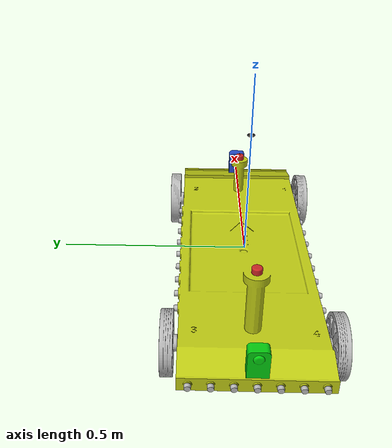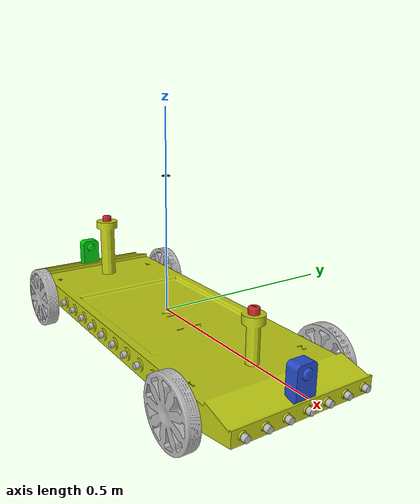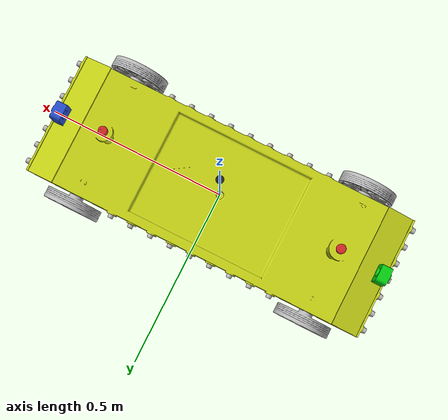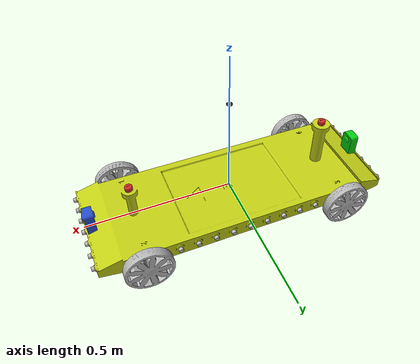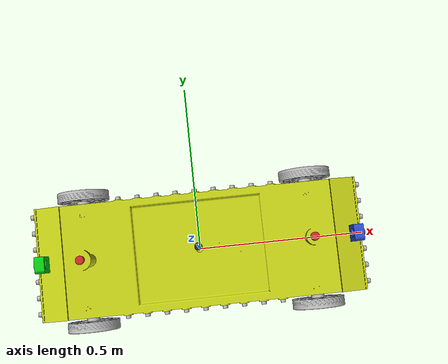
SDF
<sdf version='1.7'>
  <model name='rover_proto_A1_gps'>
    <link name='Chassis'>
      <inertial>
        <pose>-0.003619 -4e-06 -0.025334 0 -0 0</pose>
        <mass>18.0919</mass>
        <inertia>
          <ixx>0.190571</ixx>
          <ixy>-3.70553e-06</ixy>
          <ixz>0.00402853</ixz>
          <iyy>1.55584</iyy>
          <iyz>-8.33152e-06</iyz>
          <izz>1.731</izz>
        </inertia>
      </inertial>
      <collision name='Chassis_collision'>
        <pose>0 0 0 0 -0 0</pose>
        <geometry>
          <mesh>
            <scale>1 1 1</scale>
            <uri>model://line_following_rover/urdf/rover_proto_A1/meshes/Chassis.STL</uri>
          </mesh>
        </geometry>
      </collision>
      <collision name='Chassis_fixed_joint_lump__Camera_Back_Link_collision_1'>
        <pose>-0.50128 0 0.046965 0 -0 0</pose>
        <geometry>
          <mesh>
            <scale>1 1 1</scale>
            <uri>model://line_following_rover/urdf/rover_proto_A1/meshes/Camera_Back_Link.STL</uri>
          </mesh>
        </geometry>
      </collision>
      <collision name='Chassis_fixed_joint_lump__Camera_Fwd_Link_collision_2'>
        <pose>0.49872 0 0.046965 0 -0 0</pose>
        <geometry>
          <mesh>
            <scale>1 1 1</scale>
            <uri>model://line_following_rover/urdf/rover_proto_A1/meshes/Camera_Fwd_Link.STL</uri>
          </mesh>
        </geometry>
        <surface>
          <contact>
            <ode/>
          </contact>
          <friction>
            <ode/>
          </friction>
        </surface>
      </collision>
      <collision name='Chassis_fixed_joint_lump__Lidar_Back_Link_collision_3'>
        <pose>-0.34128 0 0.166 0 -0 1.57</pose>
        <geometry>
          <mesh>
            <scale>1 1 1</scale>
            <uri>model://line_following_rover/urdf/rover_proto_A1/meshes/Lidar_Back_Link.STL</uri>
          </mesh>
        </geometry>
        <surface>
          <contact>
            <ode/>
          </contact>
          <friction>
            <ode/>
          </friction>
        </surface>
      </collision>
      <collision name='Chassis_fixed_joint_lump__Lidar_Fwd_Link_collision_4'>
        <pose>0.33872 0 0.116 0 0 -1.57</pose>
        <geometry>
          <mesh>
            <scale>1 1 1</scale>
            <uri>model://line_following_rover/urdf/rover_proto_A1/meshes/Lidar_Fwd_Link.STL</uri>
          </mesh>
        </geometry>
        <surface>
          <contact>
            <ode/>
          </contact>
          <friction>
            <ode/>
          </friction>
        </surface>
      </collision>
      <collision name='Chassis_fixed_joint_lump__Lights_Back_Link_collision_5'>
        <pose>0 0 0 0 -0 0</pose>
        <geometry>
          <mesh>
            <scale>1 1 1</scale>
            <uri>model://line_following_rover/urdf/rover_proto_A1/meshes/Lights_Back_Link.STL</uri>
          </mesh>
        </geometry>
      </collision>
      <collision name='Chassis_fixed_joint_lump__Lights_Fwd_Link_collision_6'>
        <pose>0 0 0 0 -0 0</pose>
        <geometry>
          <mesh>
            <scale>1 1 1</scale>
            <uri>model://line_following_rover/urdf/rover_proto_A1/meshes/Lights_Fwd_Link.STL</uri>
          </mesh>
        </geometry>
      </collision>
      <collision name='Chassis_fixed_joint_lump__Lights_Left_Link_collision_7'>
        <pose>0 0 0 0 -0 0</pose>
        <geometry>
          <mesh>
            <scale>1 1 1</scale>
            <uri>model://line_following_rover/urdf/rover_proto_A1/meshes/Lights_Left_Link.STL</uri>
          </mesh>
        </geometry>
      </collision>
      <collision name='Chassis_fixed_joint_lump__Lights_Right_Link_collision_8'>
        <pose>0 0 0 0 -0 0</pose>
        <geometry>
          <mesh>
            <scale>1 1 1</scale>
            <uri>model://line_following_rover/urdf/rover_proto_A1/meshes/Lights_Right_Link.STL</uri>
          </mesh>
        </geometry>
      </collision>
      <visual name='Chassis_visual'>
        <pose>0 0 0 0 -0 0</pose>
        <geometry>
          <mesh>
            <scale>1 1 1</scale>
            <uri>model://line_following_rover/urdf/rover_proto_A1/meshes/Chassis.dae</uri>
          </mesh>
        </geometry>
      </visual>
      <visual name='Chassis_fixed_joint_lump__Camera_Back_Link_visual_1'>
        <pose>-0.50128 0 0.046965 0 -0 0</pose>
        <geometry>
          <mesh>
            <scale>1 1 1</scale>
            <uri>model://line_following_rover/urdf/rover_proto_A1/meshes/Camera_Back_Link.dae</uri>
          </mesh>
        </geometry>
      </visual>
      <visual name='Chassis_fixed_joint_lump__Camera_Fwd_Link_visual_2'>
        <pose>0.49872 0 0.046965 0 -0 0</pose>
        <geometry>
          <mesh>
            <scale>1 1 1</scale>
            <uri>model://line_following_rover/urdf/rover_proto_A1/meshes/Camera_Fwd_Link.STL</uri>
          </mesh>
        </geometry>
        <material>
          <script>
            <name>Gazebo/Blue</name>
            <uri>file://media/materials/scripts/gazebo.material</uri>
          </script>
        </material>
      </visual>
      <visual name='Chassis_fixed_joint_lump__Lidar_Back_Link_visual_3'>
        <pose>-0.34128 0 0.166 0 -0 1.57</pose>
        <geometry>
          <mesh>
            <scale>1 1 1</scale>
            <uri>model://line_following_rover/urdf/rover_proto_A1/meshes/Lidar_Back_Link.STL</uri>
          </mesh>
        </geometry>
        <material>
          <script>
            <name>Gazebo/Red</name>
            <uri>file://media/materials/scripts/gazebo.material</uri>
          </script>
        </material>
      </visual>
      <visual name='Chassis_fixed_joint_lump__Lidar_Fwd_Link_visual_4'>
        <pose>0.33872 0 0.116 0 0 -1.57</pose>
        <geometry>
          <mesh>
            <scale>1 1 1</scale>
            <uri>model://line_following_rover/urdf/rover_proto_A1/meshes/Lidar_Fwd_Link.STL</uri>
          </mesh>
        </geometry>
        <material>
          <script>
            <name>Gazebo/Red</name>
            <uri>file://media/materials/scripts/gazebo.material</uri>
          </script>
        </material>
      </visual>
      <visual name='Chassis_fixed_joint_lump__Lights_Back_Link_visual_5'>
        <pose>0 0 0 0 -0 0</pose>
        <geometry>
          <mesh>
            <scale>1 1 1</scale>
            <uri>model://line_following_rover/urdf/rover_proto_A1/meshes/Lights_Back_Link.STL</uri>
          </mesh>
        </geometry>
      </visual>
      <visual name='Chassis_fixed_joint_lump__Lights_Fwd_Link_visual_6'>
        <pose>0 0 0 0 -0 0</pose>
        <geometry>
          <mesh>
            <scale>1 1 1</scale>
            <uri>model://line_following_rover/urdf/rover_proto_A1/meshes/Lights_Fwd_Link.STL</uri>
          </mesh>
        </geometry>
      </visual>
      <visual name='Chassis_fixed_joint_lump__Lights_Left_Link_visual_7'>
        <pose>0 0 0 0 -0 0</pose>
        <geometry>
          <mesh>
            <scale>1 1 1</scale>
            <uri>model://line_following_rover/urdf/rover_proto_A1/meshes/Lights_Left_Link.STL</uri>
          </mesh>
        </geometry>
      </visual>
      <visual name='Chassis_fixed_joint_lump__Lights_Right_Link_visual_8'>
        <pose>0 0 0 0 -0 0</pose>
        <geometry>
          <mesh>
            <scale>1 1 1</scale>
            <uri>model://line_following_rover/urdf/rover_proto_A1/meshes/Lights_Right_Link.STL</uri>
          </mesh>
        </geometry>
      </visual>
      <sensor name='camera_scan_back' type='camera'>
        <visualize>1</visualize>
        <update_rate>30</update_rate>
        <camera name='cam_back'>
          <horizontal_fov>1.39626</horizontal_fov>
          <image>
            <width>800</width>
            <height>800</height>
            <format>R8G8B8</format>
          </image>
          <clip>
            <near>0.02</near>
            <far>300</far>
          </clip>
          <noise>
            <type>gaussian</type>
            <mean>0</mean>
            <stddev>0.007</stddev>
          </noise>
        </camera>
        <plugin name='camera_driver_bck' filename='libgazebo_ros_camera.so'>
          <updateRate>0.0</updateRate>
          <cameraName>/camera_back</cameraName>
          <imageTopicName>image_raw</imageTopicName>
          <cameraInfoTopicName>camera_info</cameraInfoTopicName>
          <frameName>Camera_Back_Link_Frame</frameName>
          <hackBaseline>0.07</hackBaseline>
        </plugin>
        <pose>-0.50128 0 0.046965 0 -0 -3.14159</pose>
        <alwaysOn>1</alwaysOn>
      </sensor>
      <sensor name='camera_scan_fwd' type='camera'>
        <visualize>1</visualize>
        <update_rate>30</update_rate>
        <camera name='cam_fwd'>
          <horizontal_fov>1.39626</horizontal_fov>
          <image>
            <width>800</width>
            <height>800</height>
            <format>R8G8B8</format>
          </image>
          <clip>
            <near>0.02</near>
            <far>300</far>
          </clip>
          <noise>
            <type>gaussian</type>
            <mean>0</mean>
            <stddev>0.007</stddev>
          </noise>
        </camera>
        <plugin name='camera_driver_fwd' filename='libgazebo_ros_camera.so'>
          <updateRate>0.0</updateRate>
          <cameraName>/camera_fwd</cameraName>
          <imageTopicName>image_raw</imageTopicName>
          <cameraInfoTopicName>camera_info</cameraInfoTopicName>
          <frameName>Camera_Fwd_Link</frameName>
          <hackBaseline>0.07</hackBaseline>
        </plugin>
        <pose>0.49872 0 0.046965 0 -0 0</pose>
        <alwaysOn>1</alwaysOn>
      </sensor>
      <sensor name='gazebo_lidar_back' type='ray'>
        <visualize>1</visualize>
        <update_rate>12</update_rate>
        <plugin name='gazebo_lidar_back' filename='libgazebo_ros_ray_sensor.so'>
          <ros>
            <remapping>~/out:=lidar_scan_back</remapping>
          </ros>
          <output_type>sensor_msgs/LaserScan</output_type>
          <frame_name>Lidar_Back_Link</frame_name>
        </plugin>
        <ray>
          <scan>
            <horizontal>
              <samples>360</samples>
              <resolution>1</resolution>
              <min_angle>0</min_angle>
              <max_angle>3.14</max_angle>
            </horizontal>
          </scan>
          <range>
            <min>0.12</min>
            <max>3.5</max>
            <resolution>0.015</resolution>
          </range>
          <noise>
            <type>gaussian</type>
            <mean>0</mean>
            <stddev>0.01</stddev>
          </noise>
        </ray>
        <pose>-0.34128 0 0.166 0 -0 1.57</pose>
      </sensor>
      <sensor name='gazebo_lidar_fwd' type='ray'>
        <visualize>1</visualize>
        <update_rate>12</update_rate>
        <plugin name='gazebo_lidar_fwd' filename='libgazebo_ros_ray_sensor.so'>
          <ros>
            <remapping>~/out:=lidar_scan_fwd</remapping>
          </ros>
          <output_type>sensor_msgs/LaserScan</output_type>
          <frame_name>Lidar_Fwd_Link</frame_name>
        </plugin>
        <ray>
          <scan>
            <horizontal>
              <samples>360</samples>
              <resolution>1</resolution>
              <min_angle>0</min_angle>
              <max_angle>3.14</max_angle>
            </horizontal>
          </scan>
          <range>
            <min>0.12</min>
            <max>3.5</max>
            <resolution>0.015</resolution>
          </range>
          <noise>
            <type>gaussian</type>
            <mean>0</mean>
            <stddev>0.01</stddev>
          </noise>
        </ray>
        <pose>0.33872 0 0.116 0 0 -1.57</pose>
      </sensor>
    </link>
    <joint name='Wheel_1_Joint' type='revolute'>
      <pose relative_to='Chassis'>0.34872 -0.215 -0.04 1.5708 -0 0</pose>
      <parent>Chassis</parent>
      <child>Wheel_1_Link</child>
      <axis>
        <xyz>0 0 -1</xyz>
        <limit>
          <effort>10</effort>
          <velocity>12</velocity>
          <lower>-1e+16</lower>
          <upper>1e+16</upper>
        </limit>
        <dynamics>
          <damping>0.25</damping>
          <friction>0.5</friction>
          <spring_reference>0</spring_reference>
          <spring_stiffness>0</spring_stiffness>
        </dynamics>
      </axis>
    </joint>
    <link name='Wheel_1_Link'>
      <pose relative_to='Wheel_1_Joint'>0 0 0 0 -0 0</pose>
      <inertial>
        <pose>0 -0 -0.016853 0 -0 0</pose>
        <mass>0.456818</mass>
        <inertia>
          <ixx>0.000768197</ixx>
          <ixy>4.1359e-21</ixy>
          <ixz>-4.91914e-19</ixz>
          <iyy>0.000768197</iyy>
          <iyz>2.33003e-19</iyz>
          <izz>0.00134492</izz>
        </inertia>
      </inertial>
      <collision name='Wheel_1_Link_collision'>
        <pose>0 0 0 0 -0 0</pose>
        <geometry>
          <mesh>
            <scale>1 1 1</scale>
            <uri>model://line_following_rover/urdf/rover_proto_A1/meshes/Wheel_1_Link.STL</uri>
          </mesh>
        </geometry>
      </collision>
      <visual name='Wheel_1_Link_visual'>
        <pose>0 0 0 0 -0 0</pose>
        <geometry>
          <mesh>
            <scale>1 1 1</scale>
            <uri>model://line_following_rover/urdf/rover_proto_A1/meshes/Wheel_1_Link.STL</uri>
          </mesh>
        </geometry>
      </visual>
    </link>
    <joint name='Wheel_2_Joint' type='revolute'>
      <pose relative_to='Chassis'>0.34872 0.215 -0.04 1.5708 -0 0</pose>
      <parent>Chassis</parent>
      <child>Wheel_2_Link</child>
      <axis>
        <xyz>0 0 -1</xyz>
        <limit>
          <effort>10</effort>
          <velocity>12</velocity>
          <lower>-1e+16</lower>
          <upper>1e+16</upper>
        </limit>
        <dynamics>
          <damping>0.25</damping>
          <friction>0.5</friction>
          <spring_reference>0</spring_reference>
          <spring_stiffness>0</spring_stiffness>
        </dynamics>
      </axis>
    </joint>
    <link name='Wheel_2_Link'>
      <pose relative_to='Wheel_2_Joint'>0 0 0 0 -0 0</pose>
      <inertial>
        <pose>-0 0 0.016853 0 -0 0</pose>
        <mass>0.456818</mass>
        <inertia>
          <ixx>0.000768197</ixx>
          <ixy>1.02115e-18</ixy>
          <ixz>-7.60711e-19</ixz>
          <iyy>0.000768197</iyy>
          <iyz>3.64043e-19</iyz>
          <izz>0.00134492</izz>
        </inertia>
      </inertial>
      <collision name='Wheel_2_Link_collision'>
        <pose>0 0 0 0 -0 0</pose>
        <geometry>
          <mesh>
            <scale>1 1 1</scale>
            <uri>model://line_following_rover/urdf/rover_proto_A1/meshes/Wheel_2_Link.STL</uri>
          </mesh>
        </geometry>
      </collision>
      <visual name='Wheel_2_Link_visual'>
        <pose>0 0 0 0 -0 0</pose>
        <geometry>
          <mesh>
            <scale>1 1 1</scale>
            <uri>model://line_following_rover/urdf/rover_proto_A1/meshes/Wheel_2_Link.STL</uri>
          </mesh>
        </geometry>
      </visual>
    </link>
    <joint name='Wheel_3_Joint' type='revolute'>
      <pose relative_to='Chassis'>-0.35128 0.21499 -0.04 1.5708 -0 0</pose>
      <parent>Chassis</parent>
      <child>Wheel_3_Link</child>
      <axis>
        <xyz>0 0 -1</xyz>
        <limit>
          <effort>10</effort>
          <velocity>12</velocity>
          <lower>-1e+16</lower>
          <upper>1e+16</upper>
        </limit>
        <dynamics>
          <damping>0.25</damping>
          <friction>0.5</friction>
          <spring_reference>0</spring_reference>
          <spring_stiffness>0</spring_stiffness>
        </dynamics>
      </axis>
    </joint>
    <link name='Wheel_3_Link'>
      <pose relative_to='Wheel_3_Joint'>0 0 0 0 -0 0</pose>
      <inertial>
        <pose>-0 -0 0.016853 0 -0 0</pose>
        <mass>0.456818</mass>
        <inertia>
          <ixx>0.000768197</ixx>
          <ixy>-1.88597e-19</ixy>
          <ixz>-4.93382e-19</ixz>
          <iyy>0.000768197</iyy>
          <iyz>-2.11063e-19</iyz>
          <izz>0.00134492</izz>
        </inertia>
      </inertial>
      <collision name='Wheel_3_Link_collision'>
        <pose>0 0 0 0 -0 0</pose>
        <geometry>
          <mesh>
            <scale>1 1 1</scale>
            <uri>model://line_following_rover/urdf/rover_proto_A1/meshes/Wheel_3_Link.STL</uri>
          </mesh>
        </geometry>
      </collision>
      <visual name='Wheel_3_Link_visual'>
        <pose>0 0 0 0 -0 0</pose>
        <geometry>
          <mesh>
            <scale>1 1 1</scale>
            <uri>model://line_following_rover/urdf/rover_proto_A1/meshes/Wheel_3_Link.STL</uri>
          </mesh>
        </geometry>
      </visual>
    </link>
    <joint name='Wheel_4_Joint' type='revolute'>
      <pose relative_to='Chassis'>-0.35128 -0.215 -0.04 1.5708 -0 0</pose>
      <parent>Chassis</parent>
      <child>Wheel_4_Link</child>
      <axis>
        <xyz>0 0 -1</xyz>
        <limit>
          <effort>10</effort>
          <velocity>12</velocity>
          <lower>-1e+16</lower>
          <upper>1e+16</upper>
        </limit>
        <dynamics>
          <damping>0.25</damping>
          <friction>0.5</friction>
          <spring_reference>0</spring_reference>
          <spring_stiffness>0</spring_stiffness>
        </dynamics>
      </axis>
    </joint>
    <link name='Wheel_4_Link'>
      <pose relative_to='Wheel_4_Joint'>0 0 0 0 -0 0</pose>
      <inertial>
        <pose>0 0 -0.016853 0 -0 0</pose>
        <mass>0.456818</mass>
        <inertia>
          <ixx>0.000768197</ixx>
          <ixy>-7.84271e-19</ixy>
          <ixz>-6.61935e-19</ixz>
          <iyy>0.000768197</iyy>
          <iyz>-2.6149e-19</iyz>
          <izz>0.00134492</izz>
        </inertia>
      </inertial>
      <collision name='Wheel_4_Link_collision'>
        <pose>0 0 0 0 -0 0</pose>
        <geometry>
          <mesh>
            <scale>1 1 1</scale>
            <uri>model://line_following_rover/urdf/rover_proto_A1/meshes/Wheel_4_Link.STL</uri>
          </mesh>
        </geometry>
      </collision>
      <visual name='Wheel_4_Link_visual'>
        <pose>0 0 0 0 -0 0</pose>
        <geometry>
          <mesh>
            <scale>1 1 1</scale>
            <uri>model://line_following_rover/urdf/rover_proto_A1/meshes/Wheel_4_Link.STL</uri>
          </mesh>
        </geometry>
      </visual>
    </link>
    <static>0</static>
    <plugin name='diff_drive_fwd' filename='libgazebo_ros_diff_drive.so'>
      <left_joint>Wheel_2_Joint</left_joint>
      <right_joint>Wheel_1_Joint</right_joint>
      <wheel_separation>0.43</wheel_separation>
      <wheel_diameter>0.16</wheel_diameter>
      <max_wheel_torque>30</max_wheel_torque>
      <max_wheel_acceleration>1.50</max_wheel_acceleration>
      <publish_odom>1</publish_odom>
      <publish_odom_tf>1</publish_odom_tf>
      <publish_wheel_tf>1</publish_wheel_tf>
      <odometry_frame>base_footprint</odometry_frame>
      <robot_base_frame>Chassis</robot_base_frame>
    </plugin>
    <plugin name='diff_drive_back' filename='libgazebo_ros_diff_drive.so'>
      <left_joint>Wheel_3_Joint</left_joint>
      <right_joint>Wheel_4_Joint</right_joint>
      <wheel_separation>0.43</wheel_separation>
      <wheel_diameter>0.16</wheel_diameter>
      <max_wheel_torque>30</max_wheel_torque>
      <max_wheel_acceleration>1.50</max_wheel_acceleration>
      <publish_odom>1</publish_odom>
      <publish_odom_tf>1</publish_odom_tf>
      <publish_wheel_tf>1</publish_wheel_tf>
      <odometry_frame>base_footprint</odometry_frame>
      <robot_base_frame>Chassis</robot_base_frame>
    </plugin>

    <include>
      <uri>model://gps</uri>
      <pose>0 0 0.34 0 0 0</pose>
      <name>gps_rover</name>
    </include>
    <joint name='gps_joint' type='fixed'>
      <child>gps::link</child>
      <parent>Chassis</parent>
    </joint>

  </model>
</sdf>

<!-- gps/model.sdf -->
<sdf version="1.6">
  <model name="gps">
    <link name="link">
      <pose>0 0 0 0 0 0</pose>
      <inertial>
        <pose>0 0 0 0 0 0</pose>
        <mass>0.015</mass>
        <inertia>
          <ixx>1e-05</ixx>
          <ixy>0</ixy>
          <ixz>0</ixz>
          <iyy>1e-05</iyy>
          <iyz>0</iyz>
          <izz>1e-05</izz>
        </inertia>
      </inertial>
      <visual name="visual">
        <geometry>
          <cylinder>
            <radius>0.01</radius>
            <length>0.002</length>
          </cylinder>
        </geometry>
        <material>
          <script>
            <name>Gazebo/Black</name>
            <uri>file://usr/share/gz/gz-sim8/media/gazebo.material</uri>
          </script>
        </material>
      </visual>
      <sensor name="gps" type="gps">
        <pose>0 0 0 0 0 0</pose>
        <update_rate>5.0</update_rate>
        <always_on>true</always_on>
        <visualize>false</visualize>
        <!-- GpsSensor noise currently not used -->
        <plugin name="gps_plugin" filename="libgazebo_gps_plugin.so">
          <robotNamespace></robotNamespace>
          <gpsNoise>true</gpsNoise>
          <gpsXYRandomWalk>2.0</gpsXYRandomWalk>
          <gpsZRandomWalk>4.0</gpsZRandomWalk>
          <gpsXYNoiseDensity>2.0e-4</gpsXYNoiseDensity>
          <gpsZNoiseDensity>4.0e-4</gpsZNoiseDensity>
          <gpsVXYNoiseDensity>0.2</gpsVXYNoiseDensity>
          <gpsVZNoiseDensity>0.4</gpsVZNoiseDensity>
        </plugin>
      </sensor>
    </link>
  </model>
</sdf>
